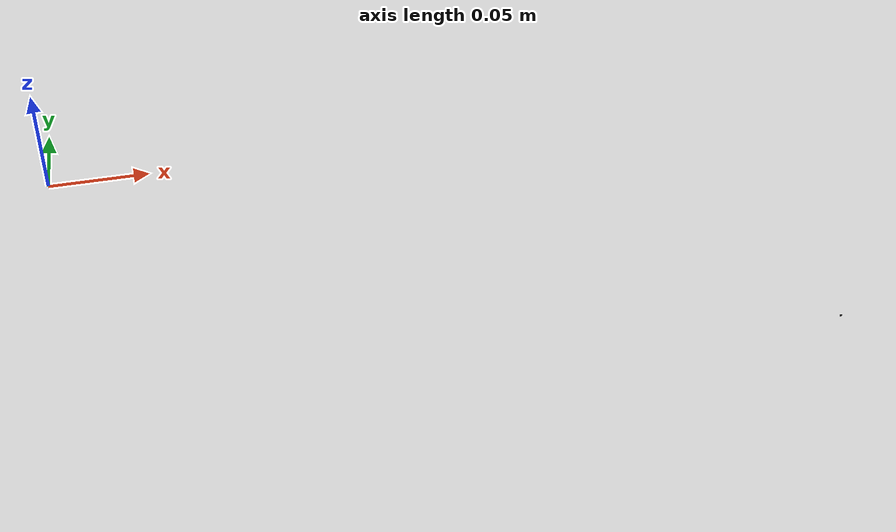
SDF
<?xml version="1.0"?>
<sdf version="1.5">
  <model name="rock">
    <static>true</static>
    <link name="link">
      <collision name="collision">
        <geometry>
          <mesh>
            <uri>model://MATE_props_2019/rock/meshes/rock.dae</uri>
          </mesh>
        </geometry>
      </collision>
      <visual name="visual">
        <cast_shadows>true</cast_shadows>
        <geometry>
          <mesh>
            <uri>model://MATE_props_2019/rock/meshes/rock.dae</uri>
          </mesh>
        </geometry>
      </visual>
    </link>
  </model>
</sdf>
